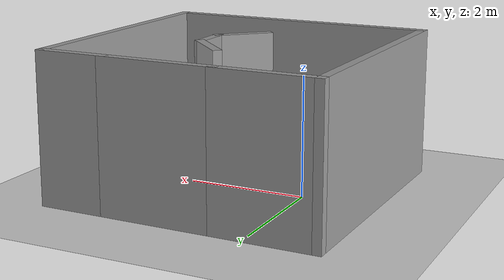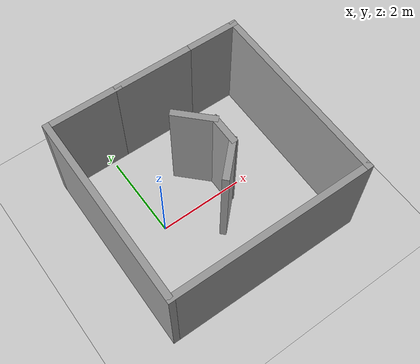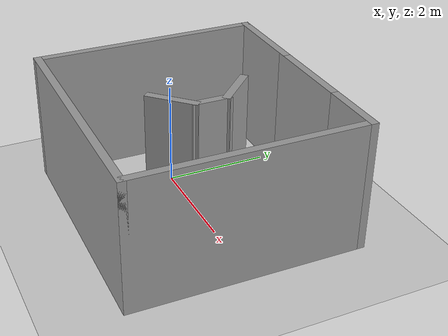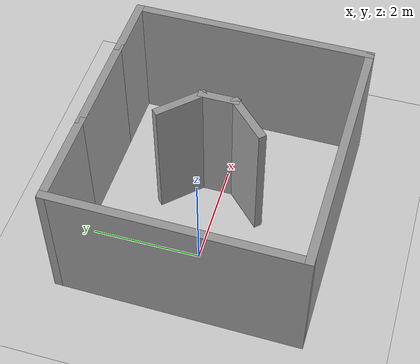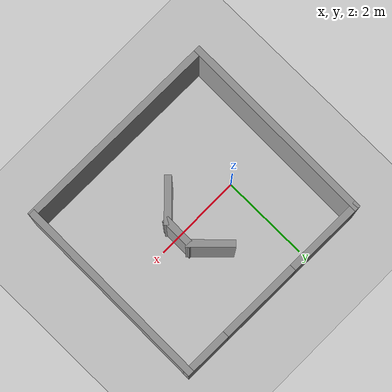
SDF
<sdf version="1.6">
 <world name="default">
  <light name="sun" type="directional">
   <pose>0 0 10 0 -0 0</pose>
   <diffuse>0.8 0.8 0.8 1</diffuse>
   <specular>0.1 0.1 0.1 1</specular>
   <attenuation>
    <range>1000</range>
    <constant>0.9</constant>
    <linear>0.01</linear>
    <quadratic>0.001</quadratic>
   </attenuation>
   <direction>-0.5 0.5 -1</direction>
  </light>
  <model name="ground_plane">
   <static>1</static>
   <link name="link">
    <collision name="collision">
     <geometry><plane><normal>0 0 1</normal><size>100 100</size></plane></geometry>
     <surface><friction><ode><mu>100</mu><mu2>50</mu2></ode></friction></surface>
    </collision>
    <visual name="visual">
     <cast_shadows>0</cast_shadows>
     <geometry><plane><normal>0 0 1</normal><size>100 100</size></plane></geometry>
     <material>
      <script><uri>file://media/materials/scripts/gazebo.material</uri><name>Gazebo/Grey</name></script>
     </material>
    </visual>
   </link>
  </model>
  <gravity>0 0 -9.8</gravity>
  <magnetic_field>6e-06 2.3e-05 -4.2e-05</magnetic_field>
  <atmosphere type="adiabatic"/>
  <physics name="default_physics" default="0" type="ode">
   <max_step_size>0.001</max_step_size>
   <real_time_factor>1</real_time_factor>
   <real_time_update_rate>1000</real_time_update_rate>
  </physics>
  <scene><ambient>0.4 0.4 0.4 1</ambient><background>0.7 0.7 0.7 1</background><shadows>1</shadows></scene>
  <spherical_coordinates>
   <surface_model>EARTH_WGS84</surface_model>
   <latitude_deg>0</latitude_deg>
   <longitude_deg>0</longitude_deg>
   <elevation>0</elevation>
   <heading_deg>0</heading_deg>
  </spherical_coordinates>
  <model name="Untitled">
   <pose>1.08654 -0.003693 0 0 0 -1.58279</pose>
   <link name="Wall_1">
    <collision name="Wall_1_Collision">
     <geometry><box><size>2 0.15 2.5</size></box></geometry>
     <pose>0 0 1.25 0 -0 0</pose>
    </collision>
    <visual name="Wall_1_Visual">
     <pose>0 0 1.25 0 -0 0</pose>
     <geometry><box><size>2 0.15 2.5</size></box></geometry>
     <material>
      <script><uri>file://media/materials/scripts/gazebo.material</uri><name>Gazebo/Grey</name></script>
      <ambient>1 1 1 1</ambient>
     </material>
    </visual>
    <pose>-2.175 0.275 0 0 -0 1.5708</pose>
   </link>
   <link name="Wall_10">
    <collision name="Wall_10_Collision">
     <geometry><box><size>0.75 0.15 2.5</size></box></geometry>
     <pose>0 0 1.25 0 -0 0</pose>
    </collision>
    <visual name="Wall_10_Visual">
     <pose>0 0 1.25 0 -0 0</pose>
     <geometry><box><size>0.75 0.15 2.5</size></box></geometry>
     <material>
      <script><uri>file://media/materials/scripts/gazebo.material</uri><name>Gazebo/Grey</name></script>
      <ambient>1 1 1 1</ambient>
     </material>
    </visual>
    <pose>-0.101535 0.530515 0 0 -0 0</pose>
   </link>
   <link name="Wall_11">
    <collision name="Wall_11_Collision">
     <geometry><box><size>1 0.15 2.5</size></box></geometry>
     <pose>0 0 1.25 0 -0 0</pose>
    </collision>
    <visual name="Wall_11_Visual">
     <pose>0 0 1.25 0 -0 0</pose>
     <geometry><box><size>1 0.15 2.5</size></box></geometry>
     <material>
      <script><uri>file://media/materials/scripts/gazebo.material</uri><name>Gazebo/Grey</name></script>
      <ambient>1 1 1 1</ambient>
     </material>
    </visual>
    <pose>0.498986 0.229995 0 0 0 -0.785398</pose>
   </link>
   <link name="Wall_3">
    <collision name="Wall_3_Collision">
     <geometry><box><size>1.25 0.15 2.5</size></box></geometry>
     <pose>0 0 1.25 0 -0 0</pose>
    </collision>
    <visual name="Wall_3_Visual">
     <pose>0 0 1.25 0 -0 0</pose>
     <geometry><box><size>1.25 0.15 2.5</size></box></geometry>
     <material>
      <script><uri>file://media/materials/scripts/gazebo.material</uri><name>Gazebo/Grey</name></script>
      <ambient>1 1 1 1</ambient>
     </material>
    </visual>
    <pose>-2.175 1.75 0 0 -0 1.5708</pose>
   </link>
   <link name="Wall_4">
    <collision name="Wall_4_Collision">
     <geometry><box><size>4.5 0.15 2.5</size></box></geometry>
     <pose>0 0 1.25 0 -0 0</pose>
    </collision>
    <visual name="Wall_4_Visual">
     <pose>0 0 1.25 0 -0 0</pose>
     <geometry><box><size>4.5 0.15 2.5</size></box></geometry>
     <material>
      <script><uri>file://media/materials/scripts/gazebo.material</uri><name>Gazebo/Grey</name></script>
      <ambient>1 1 1 1</ambient>
     </material>
    </visual>
    <pose>0 2.3 0 0 -0 0</pose>
   </link>
   <link name="Wall_5">
    <collision name="Wall_5_Collision">
     <geometry><box><size>4.75 0.15 2.5</size></box></geometry>
     <pose>0 0 1.25 0 -0 0</pose>
    </collision>
    <visual name="Wall_5_Visual">
     <pose>0 0 1.25 0 -0 0</pose>
     <geometry><box><size>4.75 0.15 2.5</size></box></geometry>
     <material>
      <script><uri>file://media/materials/scripts/gazebo.material</uri><name>Gazebo/Grey</name></script>
      <ambient>1 1 1 1</ambient>
     </material>
    </visual>
    <pose>2.175 0 0 0 0 -1.5708</pose>
   </link>
   <link name="Wall_6">
    <collision name="Wall_6_Collision">
     <geometry><box><size>4.5 0.15 2.5</size></box></geometry>
     <pose>0 0 1.25 0 -0 0</pose>
    </collision>
    <visual name="Wall_6_Visual">
     <pose>0 0 1.25 0 -0 0</pose>
     <geometry><box><size>4.5 0.15 2.5</size></box></geometry>
     <material>
      <script><uri>file://media/materials/scripts/gazebo.material</uri><name>Gazebo/Grey</name></script>
      <ambient>1 1 1 1</ambient>
     </material>
    </visual>
    <pose>0 -2.3 0 0 -0 3.14159</pose>
   </link>
   <link name="Wall_7">
    <collision name="Wall_7_Collision">
     <geometry><box><size>1.8 0.15 2.5</size></box></geometry>
     <pose>0 0 1.25 0 -0 0</pose>
    </collision>
    <visual name="Wall_7_Visual">
     <pose>0 0 1.25 0 -0 0</pose>
     <geometry><box><size>1.8 0.15 2.5</size></box></geometry>
     <material>
      <script><uri>file://media/materials/scripts/gazebo.material</uri><name>Gazebo/Grey</name></script>
      <ambient>1 1 1 1</ambient>
     </material>
    </visual>
    <pose>-2.175 -1.475 0 0 -0 1.5708</pose>
   </link>
   <link name="Wall_9">
    <collision name="Wall_9_Collision">
     <geometry><box><size>1 0.15 2.5</size></box></geometry>
     <pose>0 0 1.25 0 -0 0</pose>
    </collision>
    <visual name="Wall_9_Visual">
     <pose>0 0 1.25 0 -0 0</pose>
     <geometry><box><size>1 0.15 2.5</size></box></geometry>
     <material>
      <script><uri>file://media/materials/scripts/gazebo.material</uri><name>Gazebo/Grey</name></script>
      <ambient>1 1 1 1</ambient>
     </material>
    </visual>
    <pose>-0.702055 0.229995 0 0 -0 0.785398</pose>
   </link>
   <static>1</static>
  </model>
 </world>
</sdf>
